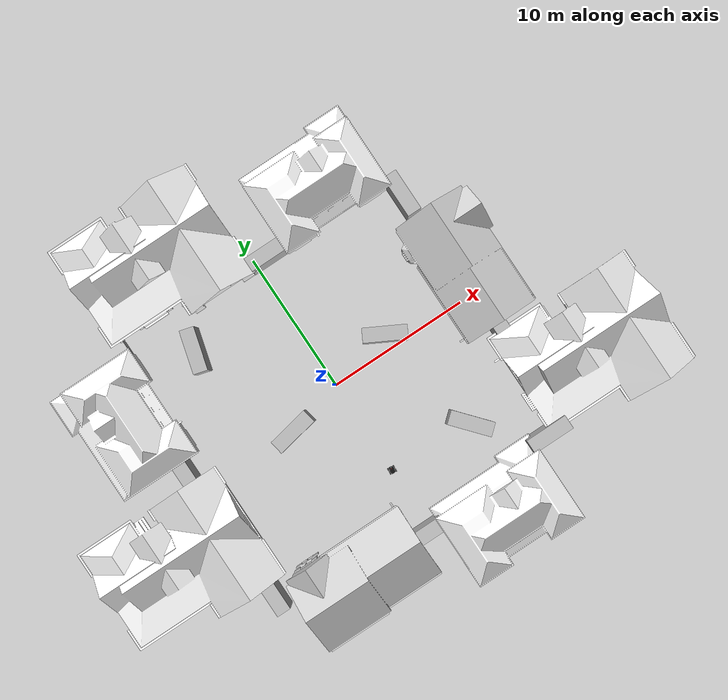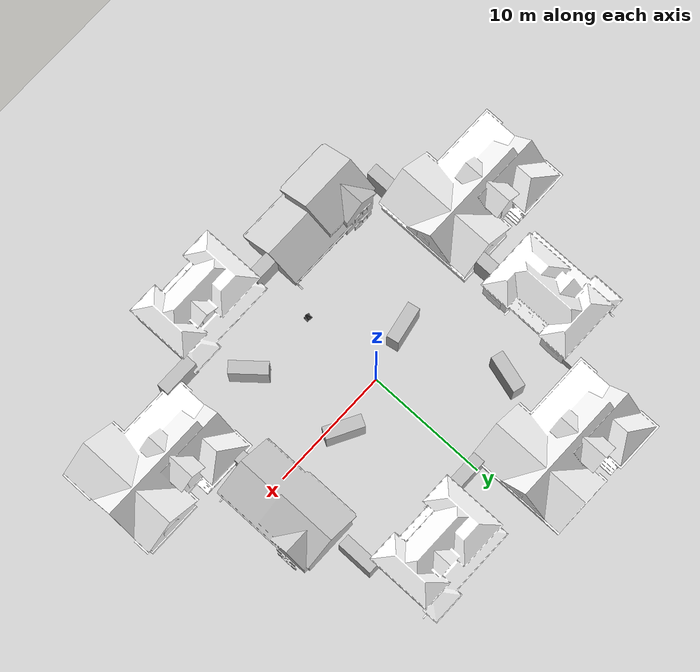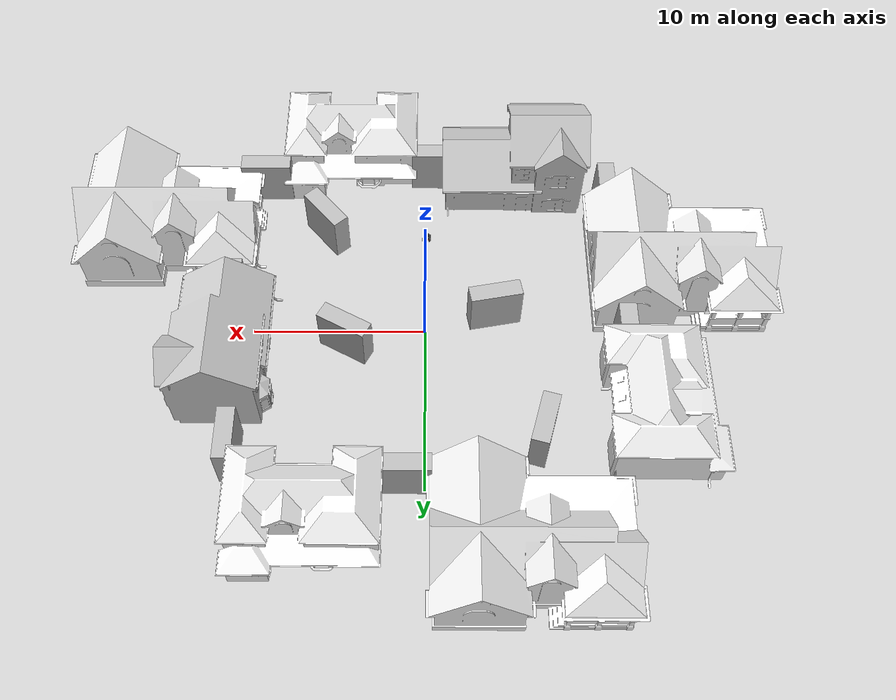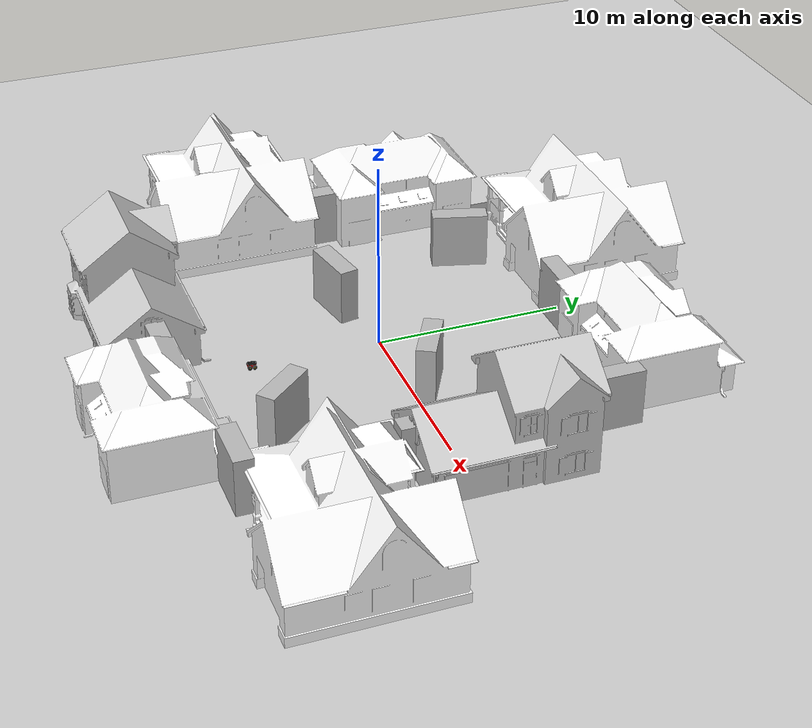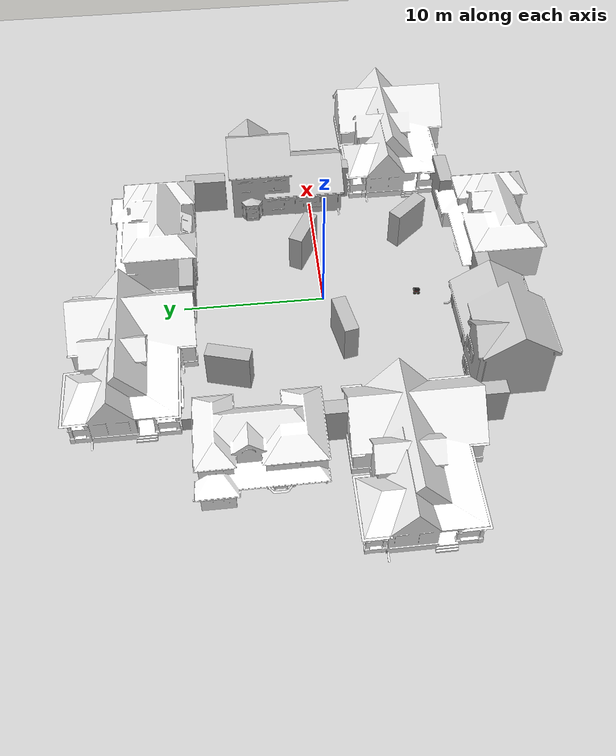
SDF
<sdf version="1.5">
 <world name="default">
  <light name="sun" type="directional">
   <pose>0 0 10 0 -0 0</pose>
   <diffuse>0.8 0.8 0.8 1</diffuse>
   <specular>0.2 0.2 0.2 1</specular>
   <attenuation>
    <range>1000</range>
    <constant>0.9</constant>
    <linear>0.01</linear>
    <quadratic>0.001</quadratic>
   </attenuation>
   <direction>-0.5 0.1 -0.9</direction>
  </light>
  <model name="ground_plane">
   <static>1</static>
   <link name="link">
    <collision name="collision">
     <geometry><plane><normal>0 0 1</normal><size>100 100</size></plane></geometry>
     <surface><friction><ode><mu>100</mu><mu2>50</mu2></ode></friction></surface>
    </collision>
    <visual name="visual">
     <cast_shadows>0</cast_shadows>
     <geometry><plane><normal>0 0 1</normal><size>100 100</size></plane></geometry>
     <material>
      <script><uri>file://media/materials/scripts/gazebo.material</uri><name>Gazebo/Grey</name></script>
     </material>
    </visual>
   </link>
  </model>
  <physics type="ode">
   <max_step_size>0.001</max_step_size>
   <real_time_factor>1</real_time_factor>
   <real_time_update_rate>1000</real_time_update_rate>
   <gravity>0 0 -9.8</gravity>
   <magnetic_field>5.5645e-06 2.28758e-05 -4.23884e-05</magnetic_field>
  </physics>
  <scene><ambient>0.4 0.4 0.4 1</ambient><background>0.7 0.7 0.7 1</background><shadows>1</shadows></scene>
  <spherical_coordinates>
   <surface_model>EARTH_WGS84</surface_model>
   <latitude_deg>0</latitude_deg>
   <longitude_deg>0</longitude_deg>
   <elevation>0</elevation>
   <heading_deg>0</heading_deg>
  </spherical_coordinates>
  <model name="Pioneer3AT">
   <pose>-0.03898 -6.81544 0.170004 6e-06 -4e-06 1.47485</pose>
   <static>0</static>
   <link name="chassis">
    <inertial>
     <mass>14</mass>
     <inertia><ixx>0.3338</ixx><ixy>0</ixy><ixz>0</ixz><iyy>0.4783</iyy><iyz>0</iyz><izz>0.3338</izz></inertia>
    </inertial>
    <collision name="collision"><geometry><box><size>0.501 0.4 0.19</size></box></geometry></collision>
    <visual name="visual">
     <geometry><mesh><uri>model://pioneer3at/meshes/chassis.dae</uri></mesh></geometry>
    </visual>
    <velocity_decay><linear>0</linear><angular>0</angular></velocity_decay>
   </link>
   <link name="right_front_wheel">
    <pose>0.125 -0.201 -0.06 1.5707 -0 0</pose>
    <collision name="collision">
     <geometry><cylinder><radius>0.11</radius><length>0.075</length></cylinder></geometry>
     <surface><friction><ode><mu>1</mu><mu2>1</mu2><slip1>0.5</slip1><slip2>0</slip2></ode></friction></surface>
    </collision>
    <visual name="visual">
     <geometry><mesh><uri>model://pioneer3at/meshes/wheel.dae</uri></mesh></geometry>
    </visual>
    <velocity_decay><linear>0</linear><angular>0</angular></velocity_decay>
    <inertial>
     <inertia><ixx>1</ixx><ixy>0</ixy><ixz>0</ixz><iyy>1</iyy><iyz>0</iyz><izz>1</izz></inertia>
     <mass>1</mass>
    </inertial>
   </link>
   <link name="left_front_wheel">
    <pose>0.125 0.201 -0.06 1.5707 -0 0</pose>
    <collision name="collision">
     <geometry><cylinder><radius>0.11</radius><length>0.075</length></cylinder></geometry>
     <surface><friction><ode><mu>1</mu><mu2>1</mu2><slip1>0.5</slip1><slip2>0</slip2></ode></friction></surface>
    </collision>
    <visual name="visual">
     <geometry><mesh><uri>model://pioneer3at/meshes/wheel.dae</uri></mesh></geometry>
    </visual>
    <velocity_decay><linear>0</linear><angular>0</angular></velocity_decay>
    <inertial>
     <inertia><ixx>1</ixx><ixy>0</ixy><ixz>0</ixz><iyy>1</iyy><iyz>0</iyz><izz>1</izz></inertia>
     <mass>1</mass>
    </inertial>
   </link>
   <link name="right_rear_wheel">
    <pose>-0.125 -0.201 -0.06 1.5707 -0 0</pose>
    <collision name="collision">
     <geometry><cylinder><radius>0.11</radius><length>0.075</length></cylinder></geometry>
     <surface><friction><ode><mu>1</mu><mu2>1</mu2><slip1>0.5</slip1><slip2>0</slip2></ode></friction></surface>
    </collision>
    <visual name="visual">
     <geometry><mesh><uri>model://pioneer3at/meshes/wheel.dae</uri></mesh></geometry>
    </visual>
    <velocity_decay><linear>0</linear><angular>0</angular></velocity_decay>
    <inertial>
     <inertia><ixx>1</ixx><ixy>0</ixy><ixz>0</ixz><iyy>1</iyy><iyz>0</iyz><izz>1</izz></inertia>
     <mass>1</mass>
    </inertial>
   </link>
   <link name="left_rear_wheel">
    <pose>-0.125 0.201 -0.06 1.5707 -0 0</pose>
    <collision name="collision">
     <geometry><cylinder><radius>0.11</radius><length>0.075</length></cylinder></geometry>
     <surface><friction><ode><mu>1</mu><mu2>1</mu2><slip1>0.5</slip1><slip2>0</slip2></ode></friction></surface>
    </collision>
    <visual name="visual">
     <geometry><mesh><uri>model://pioneer3at/meshes/wheel.dae</uri></mesh></geometry>
    </visual>
    <velocity_decay><linear>0</linear><angular>0</angular></velocity_decay>
    <inertial>
     <inertia><ixx>1</ixx><ixy>0</ixy><ixz>0</ixz><iyy>1</iyy><iyz>0</iyz><izz>1</izz></inertia>
     <mass>1</mass>
    </inertial>
   </link>
   <joint name="right_front" type="revolute">
    <child>right_front_wheel</child>
    <parent>chassis</parent>
    <axis>
     <xyz>0 0 -1</xyz>
     <limit><lower>-1e+16</lower><upper>1e+16</upper></limit>
     <use_parent_model_frame>0</use_parent_model_frame>
     <dynamics><spring_reference>0</spring_reference><spring_stiffness>0</spring_stiffness></dynamics>
    </axis>
   </joint>
   <joint name="right_rear" type="revolute">
    <child>right_rear_wheel</child>
    <parent>chassis</parent>
    <axis>
     <xyz>0 0 -1</xyz>
     <limit><lower>-1e+16</lower><upper>1e+16</upper></limit>
     <use_parent_model_frame>0</use_parent_model_frame>
     <dynamics><spring_reference>0</spring_reference><spring_stiffness>0</spring_stiffness></dynamics>
    </axis>
   </joint>
   <joint name="left_front" type="revolute">
    <child>left_front_wheel</child>
    <parent>chassis</parent>
    <axis>
     <xyz>0 0 -1</xyz>
     <limit><lower>-1e+16</lower><upper>1e+16</upper></limit>
     <use_parent_model_frame>0</use_parent_model_frame>
     <dynamics><spring_reference>0</spring_reference><spring_stiffness>0</spring_stiffness></dynamics>
    </axis>
   </joint>
   <joint name="left_rear" type="revolute">
    <child>left_rear_wheel</child>
    <parent>chassis</parent>
    <axis>
     <xyz>0 0 -1</xyz>
     <limit><lower>-1e+16</lower><upper>1e+16</upper></limit>
     <use_parent_model_frame>0</use_parent_model_frame>
     <dynamics><spring_reference>0</spring_reference><spring_stiffness>0</spring_stiffness></dynamics>
    </axis>
   </joint>
   <link name="hokuyo::link">
    <inertial>
     <mass>0.1</mass>
     <inertia><ixx>1</ixx><ixy>0</ixy><ixz>0</ixz><iyy>1</iyy><iyz>0</iyz><izz>1</izz></inertia>
    </inertial>
    <visual name="visual"><geometry><mesh><uri>model://hokuyo/meshes/hokuyo.dae</uri></mesh></geometry></visual>
    <collision name="collision-base">
     <pose>0 0 -0.0145 0 -0 0</pose>
     <geometry><box><size>0.05 0.05 0.041</size></box></geometry>
    </collision>
    <collision name="collision-top">
     <pose>0 0 0.0205 0 -0 0</pose>
     <geometry><cylinder><radius>0.021</radius><length>0.029</length></cylinder></geometry>
    </collision>
    <sensor name="laser" type="ray">
     <pose>0.01 0 0.0175 0 -0 0</pose>
     <ray>
      <scan>
       <horizontal>
        <samples>20</samples>
        <resolution>1</resolution>
        <min_angle>-1.26889</min_angle>
        <max_angle>1.2689</max_angle>
       </horizontal>
      </scan>
      <range><min>0.08</min><max>5</max><resolution>0.01</resolution></range>
     </ray>
     <plugin name="laser" filename="libRayPlugin.so"/>
     <always_on>1</always_on>
     <update_rate>20</update_rate>
     <visualize>1</visualize>
     <plugin name="gazebo_ros_head_hokuyo_controller" filename="libgazebo_ros_laser.so">
      <topicName>/Pioneer3AT/laserscan</topicName>
      <frameName>Pioneer3AT::hokuyo::link</frameName>
     </plugin>
    </sensor>
    <velocity_decay><linear>0</linear><angular>0</angular></velocity_decay>
    <pose>0.2 0 0.13 0 -0 0</pose>
   </link>
   <joint name="hokuyo_joint" type="revolute">
    <child>hokuyo::link</child>
    <parent>chassis</parent>
    <axis>
     <xyz>0 0 1</xyz>
     <limit><upper>0</upper><lower>0</lower></limit>
     <use_parent_model_frame>0</use_parent_model_frame>
     <dynamics><spring_reference>0</spring_reference><spring_stiffness>0</spring_stiffness></dynamics>
    </axis>
   </joint>
   <link name="camera::link">
    <inertial>
     <mass>0.1</mass>
     <inertia><ixx>1</ixx><ixy>0</ixy><ixz>0</ixz><iyy>1</iyy><iyz>0</iyz><izz>1</izz></inertia>
    </inertial>
    <collision name="collision"><geometry><box><size>0.1 0.1 0.1</size></box></geometry></collision>
    <visual name="visual"><geometry><box><size>0.1 0.1 0.1</size></box></geometry></visual>
    <sensor name="camera" type="camera">
     <pose>0.01 0 0.3175 0 -0 0</pose>
     <camera name="__default__">
      <horizontal_fov>1.047</horizontal_fov>
      <image><width>320</width><height>240</height></image>
      <clip><near>0.1</near><far>100</far></clip>
     </camera>
     <plugin name="camera_controller" filename="libgazebo_ros_camera.so">
      <alwaysOn>true</alwaysOn>
      <updateRate>20.0</updateRate>
      <cameraName>Pioneer3AT/camera1</cameraName>
      <imageTopicName>image_raw</imageTopicName>
      <cameraInfoTopicName>camera_info</cameraInfoTopicName>
      <frameName>camera_link</frameName>
      <hackBaseline>0.07</hackBaseline>
      <distortionK1>0.0</distortionK1>
      <distortionK2>0.0</distortionK2>
      <distortionK3>0.0</distortionK3>
      <distortionT1>0.0</distortionT1>
      <distortionT2>0.0</distortionT2>
     </plugin>
     <visualize>1</visualize>
    </sensor>
   </link>
   <joint name="camera_joint" type="revolute">
    <child>camera::link</child>
    <parent>chassis</parent>
    <axis>
     <xyz>0 0 1</xyz>
     <limit><upper>0</upper><lower>0</lower></limit>
     <use_parent_model_frame>0</use_parent_model_frame>
     <dynamics><spring_reference>0</spring_reference><spring_stiffness>0</spring_stiffness></dynamics>
    </axis>
   </joint>
   <link name="bumper::link">
    <inertial>
     <mass>0.1</mass>
     <inertia><ixx>1</ixx><ixy>0</ixy><ixz>0</ixz><iyy>1</iyy><iyz>0</iyz><izz>1</izz></inertia>
    </inertial>
    <collision name="collision"><geometry><box><size>0.55 0.55 0.2</size></box></geometry></collision>
    <visual name="visual"><geometry><box><size>0.1 0.1 0.1</size></box></geometry></visual>
    <sensor name="contact_sensor" type="contact">
     <pose>0.0 0 0.25 0 -0 0</pose>
     <contact><collision>collision</collision></contact>
     <plugin name="bbumper" filename="libgazebo_ros_bumper.so">
      <bumperTopicName>Pioneer3AT/contact_sensor</bumperTopicName>
      <frameName>world</frameName>
      <always_on>true</always_on>
      <update_rate>20.0</update_rate>
     </plugin>
     <visualize>1</visualize>
    </sensor>
   </link>
   <joint name="bumper_joint" type="revolute">
    <child>bumper::link</child>
    <parent>chassis</parent>
    <axis>
     <xyz>0 0 1</xyz>
     <limit><upper>0</upper><lower>0</lower></limit>
     <use_parent_model_frame>0</use_parent_model_frame>
     <dynamics><spring_reference>0</spring_reference><spring_stiffness>0</spring_stiffness></dynamics>
    </axis>
   </joint>
   <plugin name="skid_steer_drive_controller" filename="libgazebo_ros_skid_steer_drive.so">
    <updateRate>20.0</updateRate>
    <leftFrontJoint>left_front</leftFrontJoint>
    <rightFrontJoint>right_front</rightFrontJoint>
    <rightRearJoint>right_rear</rightRearJoint>
    <leftRearJoint>left_rear</leftRearJoint>
    <wheelSeparation>0.5</wheelSeparation>
    <wheelDiameter>0.22</wheelDiameter>
    <commandTopic>/Pioneer3AT/cmd_vel</commandTopic>
    <torque>5.</torque>
   </plugin>
  </model>
  <model name="House 1">
   <static>1</static>
   <link name="link">
    <collision name="collision">
     <geometry><mesh><uri>model://house_1/meshes/house_1.dae</uri></mesh></geometry>
    </collision>
    <visual name="visual">
     <geometry><mesh><uri>model://house_1/meshes/house_1.dae</uri></mesh></geometry>
     <material>
      <script>
       <uri>model://house_1/materials/scripts</uri>
       <uri>model://house_1/materials/textures</uri>
       <name>House_1/Diffuse</name>
      </script>
      <shader type="normal_map_object_space"><normal_map>House_1_Normal.png</normal_map></shader>
     </material>
    </visual>
   </link>
   <pose>-5.33169 13.6297 0 0 -0 0</pose>
  </model>
  <model name="House 2">
   <static>1</static>
   <link name="link">
    <collision name="collision">
     <geometry><mesh><uri>model://house_2/meshes/house_2.dae</uri></mesh></geometry>
    </collision>
    <visual name="visual">
     <geometry><mesh><uri>model://house_2/meshes/house_2.dae</uri></mesh></geometry>
     <material>
      <script>
       <uri>model://house_2/materials/scripts</uri>
       <uri>model://house_2/materials/textures</uri>
       <uri>model://house_1/materials/textures</uri>
       <name>House_2/Diffuse</name>
      </script>
      <shader type="normal_map_object_space">
       <normal_map>model://house_1/materials/textures/House_1_Normal.png</normal_map>
      </shader>
     </material>
    </visual>
   </link>
   <pose>5.55864 11.542 0 0 -0 0</pose>
  </model>
  <model name="House 3_0">
   <static>1</static>
   <link name="link">
    <collision name="collision">
     <geometry><mesh><uri>model://house_3/meshes/house_3.dae</uri></mesh></geometry>
    </collision>
    <visual name="visual">
     <geometry><mesh><uri>model://house_3/meshes/house_3.dae</uri></mesh></geometry>
     <material>
      <script>
       <uri>model://house_3/materials/scripts</uri>
       <uri>model://house_3/materials/textures</uri>
       <uri>model://house_1/materials/textures</uri>
       <name>House_3/Diffuse</name>
      </script>
      <shader type="normal_map_object_space">
       <normal_map>model://house_1/materials/textures/House_1_Normal.png</normal_map>
      </shader>
     </material>
    </visual>
   </link>
   <pose>11.4269 1.46698 0 0 0 -1.5708</pose>
  </model>
  <model name="House 1_0">
   <static>1</static>
   <link name="link">
    <collision name="collision">
     <geometry><mesh><uri>model://house_1/meshes/house_1.dae</uri></mesh></geometry>
    </collision>
    <visual name="visual">
     <geometry><mesh><uri>model://house_1/meshes/house_1.dae</uri></mesh></geometry>
     <material>
      <script>
       <uri>model://house_1/materials/scripts</uri>
       <uri>model://house_1/materials/textures</uri>
       <name>House_1/Diffuse</name>
      </script>
      <shader type="normal_map_object_space"><normal_map>House_1_Normal.png</normal_map></shader>
     </material>
    </visual>
   </link>
   <pose>15.4671 -7 0 0 -0 0</pose>
  </model>
  <model name="House 2_0">
   <static>1</static>
   <link name="link">
    <collision name="collision">
     <geometry><mesh><uri>model://house_2/meshes/house_2.dae</uri></mesh></geometry>
    </collision>
    <visual name="visual">
     <geometry><mesh><uri>model://house_2/meshes/house_2.dae</uri></mesh></geometry>
     <material>
      <script>
       <uri>model://house_2/materials/scripts</uri>
       <uri>model://house_2/materials/textures</uri>
       <uri>model://house_1/materials/textures</uri>
       <name>House_2/Diffuse</name>
      </script>
      <shader type="normal_map_object_space">
       <normal_map>model://house_1/materials/textures/House_1_Normal.png</normal_map>
      </shader>
     </material>
    </visual>
   </link>
   <pose>4 -13.4593 0 0 -0 0</pose>
  </model>
  <model name="House 3_1">
   <static>1</static>
   <link name="link">
    <collision name="collision">
     <geometry><mesh><uri>model://house_3/meshes/house_3.dae</uri></mesh></geometry>
    </collision>
    <visual name="visual">
     <geometry><mesh><uri>model://house_3/meshes/house_3.dae</uri></mesh></geometry>
     <material>
      <script>
       <uri>model://house_3/materials/scripts</uri>
       <uri>model://house_3/materials/textures</uri>
       <uri>model://house_1/materials/textures</uri>
       <name>House_3/Diffuse</name>
      </script>
      <shader type="normal_map_object_space">
       <normal_map>model://house_1/materials/textures/House_1_Normal.png</normal_map>
      </shader>
     </material>
    </visual>
   </link>
   <pose>-5.07585 -11.4835 0 0 -0 0</pose>
  </model>
  <model name="House 1_1">
   <static>1</static>
   <link name="link">
    <collision name="collision">
     <geometry><mesh><uri>model://house_1/meshes/house_1.dae</uri></mesh></geometry>
    </collision>
    <visual name="visual">
     <geometry><mesh><uri>model://house_1/meshes/house_1.dae</uri></mesh></geometry>
     <material>
      <script>
       <uri>model://house_1/materials/scripts</uri>
       <uri>model://house_1/materials/textures</uri>
       <name>House_1/Diffuse</name>
      </script>
      <shader type="normal_map_object_space"><normal_map>House_1_Normal.png</normal_map></shader>
     </material>
    </visual>
   </link>
   <pose>-14.723 -3.93635 0 0 -0 0</pose>
  </model>
  <model name="House 2_1">
   <static>1</static>
   <link name="link">
    <collision name="collision">
     <geometry><mesh><uri>model://house_2/meshes/house_2.dae</uri></mesh></geometry>
    </collision>
    <visual name="visual">
     <geometry><mesh><uri>model://house_2/meshes/house_2.dae</uri></mesh></geometry>
     <material>
      <script>
       <uri>model://house_2/materials/scripts</uri>
       <uri>model://house_2/materials/textures</uri>
       <uri>model://house_1/materials/textures</uri>
       <name>House_2/Diffuse</name>
      </script>
      <shader type="normal_map_object_space">
       <normal_map>model://house_1/materials/textures/House_1_Normal.png</normal_map>
      </shader>
     </material>
    </visual>
   </link>
   <pose>-12.5857 4.70646 0 0 -0 1.5708</pose>
  </model>
  <model name="brick_box_3x1x3">
   <static>1</static>
   <link name="chassis">
    <pose>0 0 1.5 0 -0 0</pose>
    <collision name="collision"><geometry><box><size>3 1 3</size></box></geometry></collision>
    <visual name="visual">
     <geometry><mesh><uri>model://brick_box_3x1x3/meshes/simple_box.dae</uri><scale>3 1 3</scale></mesh></geometry>
     <material>
      <script>
       <uri>model://brick_box_3x1x3/materials/scripts</uri>
       <uri>model://brick_box_3x1x3/materials/textures</uri>
       <name>BrickBox/Diffuse</name>
      </script>
     </material>
    </visual>
   </link>
   <pose>1.10479 9.63979 0 0 -0 0</pose>
  </model>
  <model name="brick_box_3x1x3_clone">
   <static>1</static>
   <link name="chassis">
    <pose>0 0 1.5 0 -0 0</pose>
    <collision name="collision"><geometry><box><size>3 1 3</size></box></geometry></collision>
    <visual name="visual">
     <geometry><mesh><uri>model://brick_box_3x1x3/meshes/simple_box.dae</uri><scale>3 1 3</scale></mesh></geometry>
     <material>
      <script>
       <uri>model://brick_box_3x1x3/materials/scripts</uri>
       <uri>model://brick_box_3x1x3/materials/textures</uri>
       <name>BrickBox/Diffuse</name>
      </script>
     </material>
    </visual>
   </link>
   <pose>-0.620321 -11.3778 0 0 -0 0</pose>
  </model>
  <model name="brick_box_3x1x3_clone_clone_0">
   <static>1</static>
   <link name="chassis">
    <pose>0 0 1.5 0 -0 0</pose>
    <collision name="collision"><geometry><box><size>3 1 3</size></box></geometry></collision>
    <visual name="visual">
     <geometry><mesh><uri>model://brick_box_3x1x3/meshes/simple_box.dae</uri><scale>3 1 3</scale></mesh></geometry>
     <material>
      <script>
       <uri>model://brick_box_3x1x3/materials/scripts</uri>
       <uri>model://brick_box_3x1x3/materials/textures</uri>
       <name>BrickBox/Diffuse</name>
      </script>
     </material>
    </visual>
   </link>
   <pose>11.1254 -1.63011 0 0 -0 1.5708</pose>
  </model>
  <model name="brick_box_3x1x3_clone_clone_0_clone">
   <static>1</static>
   <link name="chassis">
    <pose>0 0 1.5 0 -0 0</pose>
    <collision name="collision"><geometry><box><size>3 1 3</size></box></geometry></collision>
    <visual name="visual">
     <geometry><mesh><uri>model://brick_box_3x1x3/meshes/simple_box.dae</uri><scale>3 1 3</scale></mesh></geometry>
     <material>
      <script>
       <uri>model://brick_box_3x1x3/materials/scripts</uri>
       <uri>model://brick_box_3x1x3/materials/textures</uri>
       <name>BrickBox/Diffuse</name>
      </script>
     </material>
    </visual>
   </link>
   <pose>10.5564 8 0 0 -0 1.5708</pose>
  </model>
  <model name="brick_box_3x1x3_clone_clone_0_clone_0">
   <static>1</static>
   <link name="chassis">
    <pose>0 0 1.5 0 -0 0</pose>
    <collision name="collision"><geometry><box><size>3 1 3</size></box></geometry></collision>
    <visual name="visual">
     <geometry><mesh><uri>model://brick_box_3x1x3/meshes/simple_box.dae</uri><scale>3 1 3</scale></mesh></geometry>
     <material>
      <script>
       <uri>model://brick_box_3x1x3/materials/scripts</uri>
       <uri>model://brick_box_3x1x3/materials/textures</uri>
       <name>BrickBox/Diffuse</name>
      </script>
     </material>
    </visual>
   </link>
   <pose>-11.4114 1 0 0 -0 1.5708</pose>
  </model>
  <model name="brick_box_3x1x3_clone_clone_0_clone_1">
   <static>1</static>
   <link name="chassis">
    <pose>0 0 1.5 0 -0 0</pose>
    <collision name="collision"><geometry><box><size>3 1 3</size></box></geometry></collision>
    <visual name="visual">
     <geometry><mesh><uri>model://brick_box_3x1x3/meshes/simple_box.dae</uri><scale>3 1 3</scale></mesh></geometry>
     <material>
      <script>
       <uri>model://brick_box_3x1x3/materials/scripts</uri>
       <uri>model://brick_box_3x1x3/materials/textures</uri>
       <name>BrickBox/Diffuse</name>
      </script>
     </material>
    </visual>
   </link>
   <pose>-11 -9 0 0 -0 1.5708</pose>
  </model>
  <model name="nist_maze_wall_120_0">
   <static>1</static>
   <link name="nist_maze_wall_120_link">
    <collision name="collision">
     <geometry>
      <mesh><uri>model://nist_maze_wall_120/meshes/nist_maze_wall_120.dae</uri><scale>1 1 1</scale></mesh>
     </geometry>
    </collision>
    <visual name="visual">
     <geometry>
      <mesh><uri>model://nist_maze_wall_120/meshes/nist_maze_wall_120.dae</uri><scale>1 1 1</scale></mesh>
     </geometry>
    </visual>
   </link>
   <pose>-10.7548 9.67861 0 0 0 -1.5708</pose>
  </model>
  <model name="brick_box_3x1x3_0">
   <static>1</static>
   <link name="chassis">
    <pose>0 0 1.5 0 -0 0</pose>
    <collision name="collision"><geometry><box><size>3 1 3</size></box></geometry></collision>
    <visual name="visual">
     <geometry><mesh><uri>model://brick_box_3x1x3/meshes/simple_box.dae</uri><scale>3 1 3</scale></mesh></geometry>
     <material>
      <script>
       <uri>model://brick_box_3x1x3/materials/scripts</uri>
       <uri>model://brick_box_3x1x3/materials/textures</uri>
       <name>BrickBox/Diffuse</name>
      </script>
     </material>
    </visual>
   </link>
   <pose>4.55702 1 -0 0 0 -0.49593</pose>
  </model>
  <model name="brick_box_3x1x3_0_clone">
   <static>1</static>
   <link name="chassis">
    <pose>0 0 1.5 0 -0 0</pose>
    <collision name="collision"><geometry><box><size>3 1 3</size></box></geometry></collision>
    <visual name="visual">
     <geometry><mesh><uri>model://brick_box_3x1x3/meshes/simple_box.dae</uri><scale>3 1 3</scale></mesh></geometry>
     <material>
      <script>
       <uri>model://brick_box_3x1x3/materials/scripts</uri>
       <uri>model://brick_box_3x1x3/materials/textures</uri>
       <name>BrickBox/Diffuse</name>
      </script>
     </material>
    </visual>
   </link>
   <pose>-4 -1 0 0 -0 0.189421</pose>
  </model>
  <model name="brick_box_3x1x3_0_clone_0">
   <static>1</static>
   <link name="chassis">
    <pose>0 0 1.5 0 -0 0</pose>
    <collision name="collision"><geometry><box><size>3 1 3</size></box></geometry></collision>
    <visual name="visual">
     <geometry><mesh><uri>model://brick_box_3x1x3/meshes/simple_box.dae</uri><scale>3 1 3</scale></mesh></geometry>
     <material>
      <script>
       <uri>model://brick_box_3x1x3/materials/scripts</uri>
       <uri>model://brick_box_3x1x3/materials/textures</uri>
       <name>BrickBox/Diffuse</name>
      </script>
     </material>
    </visual>
   </link>
   <pose>-6.44169 7 0 0 -0 1.30057</pose>
  </model>
  <model name="brick_box_3x1x3_0_clone_1">
   <static>1</static>
   <link name="chassis">
    <pose>0 0 1.5 0 -0 0</pose>
    <collision name="collision"><geometry><box><size>3 1 3</size></box></geometry></collision>
    <visual name="visual">
     <geometry><mesh><uri>model://brick_box_3x1x3/meshes/simple_box.dae</uri><scale>3 1 3</scale></mesh></geometry>
     <material>
      <script>
       <uri>model://brick_box_3x1x3/materials/scripts</uri>
       <uri>model://brick_box_3x1x3/materials/textures</uri>
       <name>BrickBox/Diffuse</name>
      </script>
     </material>
    </visual>
   </link>
   <pose>6 -7 0 0 0 -0.861831</pose>
  </model>
  <gravity>0 0 -9.8</gravity>
  <magnetic_field>6e-06 2.3e-05 -4.2e-05</magnetic_field>
  <atmosphere type="adiabatic"/>
  <model name="brick_box_3x1x3_clone_clone">
   <static>1</static>
   <link name="chassis">
    <pose>0 0 1.5 0 -0 0</pose>
    <collision name="collision"><geometry><box><size>3 1 3</size></box></geometry></collision>
    <visual name="visual">
     <geometry><mesh><uri>model://brick_box_3x1x3/meshes/simple_box.dae</uri><scale>3 1 3</scale></mesh></geometry>
     <material>
      <script>
       <uri>model://brick_box_3x1x3/materials/scripts</uri>
       <uri>model://brick_box_3x1x3/materials/textures</uri>
       <name>BrickBox/Diffuse</name>
      </script>
     </material>
    </visual>
   </link>
   <pose>9.86217 -10.444 0 0 -0 0</pose>
  </model>
 </world>
</sdf>
